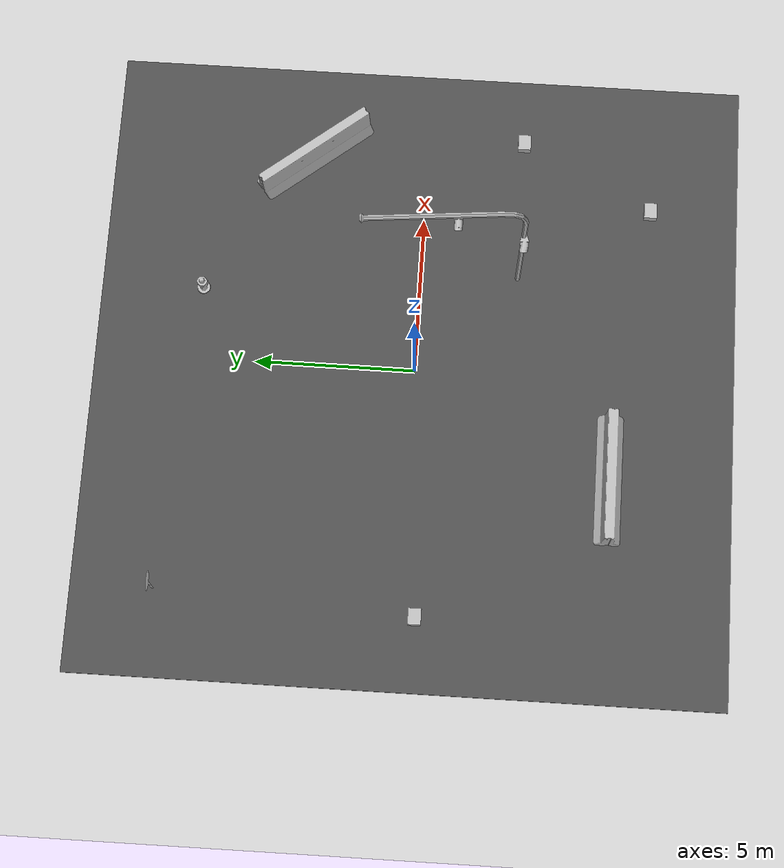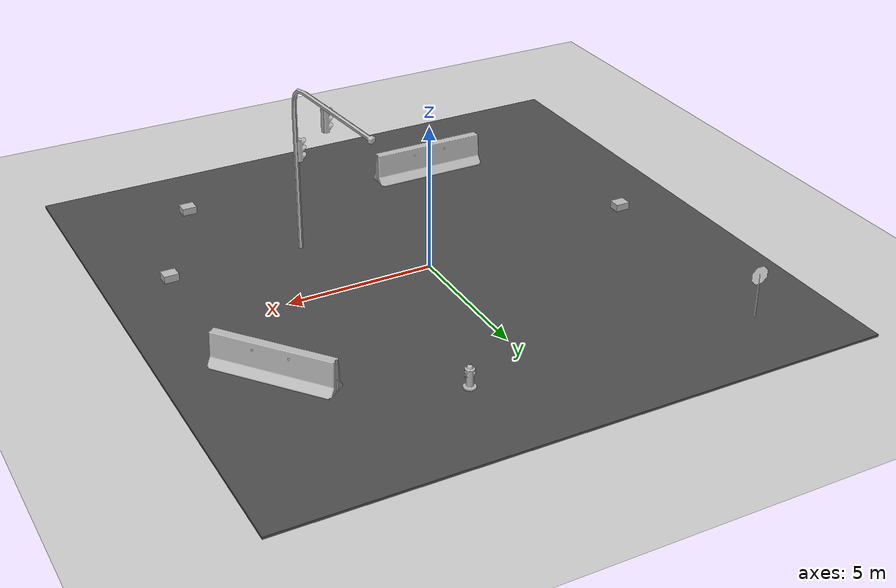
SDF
<sdf version="1.7">
 <world name="default">
  <light name="sun" type="directional">
   <pose>0 0 10 0 -0 0</pose>
   <diffuse>0.8 0.8 0.8 1</diffuse>
   <specular>0.2 0.2 0.2 1</specular>
   <attenuation>
    <range>1000</range>
    <constant>0.9</constant>
    <linear>0.01</linear>
    <quadratic>0.001</quadratic>
   </attenuation>
   <direction>-0.5 0.1 -0.9</direction>
   <spot><inner_angle>0</inner_angle><outer_angle>0</outer_angle><falloff>0</falloff></spot>
  </light>
  <model name="ground_plane">
   <static>1</static>
   <link name="link">
    <collision name="collision">
     <geometry><plane><normal>0 0 1</normal><size>100 100</size></plane></geometry>
     <surface>
      <contact><collide_bitmask>65535</collide_bitmask></contact>
      <friction><ode><mu>100</mu><mu2>50</mu2></ode></friction>
     </surface>
    </collision>
    <visual name="visual">
     <cast_shadows>0</cast_shadows>
     <geometry><plane><normal>0 0 1</normal><size>100 100</size></plane></geometry>
     <material>
      <script><uri>file://media/materials/scripts/gazebo.material</uri><name>Gazebo/Grey</name></script>
     </material>
    </visual>
   </link>
  </model>
  <gravity>0 0 -9.8</gravity>
  <magnetic_field>6e-06 2.3e-05 -4.2e-05</magnetic_field>
  <atmosphere type="adiabatic"/>
  <physics type="ode">
   <max_step_size>0.001</max_step_size>
   <real_time_factor>1</real_time_factor>
   <real_time_update_rate>1000</real_time_update_rate>
  </physics>
  <scene><ambient>0.4 0.4 0.4 1</ambient><background>0.7 0.7 0.7 1</background><shadows>1</shadows></scene>
  <spherical_coordinates>
   <surface_model>EARTH_WGS84</surface_model>
   <latitude_deg>0</latitude_deg>
   <longitude_deg>0</longitude_deg>
   <elevation>0</elevation>
   <heading_deg>0</heading_deg>
  </spherical_coordinates>
  <model name="asphalt_plane">
   <static>1</static>
   <link name="link">
    <collision name="collision"><geometry><box><size>20 20 0.1</size></box></geometry></collision>
    <visual name="visual">
     <cast_shadows>0</cast_shadows>
     <geometry><box><size>20 20 0.1</size></box></geometry>
     <material>
      <script>
       <uri>model://asphalt_plane/materials/scripts</uri>
       <uri>model://asphalt_plane/materials/textures</uri>
       <name>vrc/asphalt</name>
      </script>
     </material>
    </visual>
   </link>
   <pose>-0.030372 0.027147 0 0 -0 0</pose>
  </model>
  <model name="jersey_barrier">
   <static>1</static>
   <link name="link">
    <visual name="visual">
     <geometry><mesh><uri>model://jersey_barrier/meshes/jersey_barrier.dae</uri></mesh></geometry>
    </visual>
    <collision name="upright">
     <pose>0 0 0.5715 0 -0 0</pose>
     <geometry><box><size>4.06542 0.3063 1.143</size></box></geometry>
    </collision>
    <collision name="base">
     <pose>0 0 0.032258 0 -0 0</pose>
     <geometry><box><size>4.06542 0.8107 0.064516</size></box></geometry>
    </collision>
    <collision name="base2">
     <pose>0 0 0.1 0 -0 0</pose>
     <geometry><box><size>4.06542 0.65 0.1</size></box></geometry>
    </collision>
    <collision name="base3">
     <pose>0 0 0.2 0 -0 0</pose>
     <geometry><box><size>4.06542 0.5 0.1</size></box></geometry>
    </collision>
    <collision name="left-angle">
     <pose>0 -0.224 0.2401 0.9 -0 0</pose>
     <geometry><box><size>4.06542 0.5 0.064516</size></box></geometry>
    </collision>
    <collision name="right-angle">
     <pose>0 0.224 0.2401 -0.9 0 0</pose>
     <geometry><box><size>4.06542 0.5 0.064516</size></box></geometry>
    </collision>
   </link>
   <pose>-3.1609 -6.17519 0 0 -0 0</pose>
  </model>
  <model name="jersey_barrier_clone">
   <static>1</static>
   <link name="link">
    <visual name="visual">
     <geometry><mesh><uri>model://jersey_barrier/meshes/jersey_barrier.dae</uri></mesh></geometry>
    </visual>
    <collision name="upright">
     <pose>0 0 0.5715 0 -0 0</pose>
     <geometry><box><size>4.06542 0.3063 1.143</size></box></geometry>
    </collision>
    <collision name="base">
     <pose>0 0 0.032258 0 -0 0</pose>
     <geometry><box><size>4.06542 0.8107 0.064516</size></box></geometry>
    </collision>
    <collision name="base2">
     <pose>0 0 0.1 0 -0 0</pose>
     <geometry><box><size>4.06542 0.65 0.1</size></box></geometry>
    </collision>
    <collision name="base3">
     <pose>0 0 0.2 0 -0 0</pose>
     <geometry><box><size>4.06542 0.5 0.1</size></box></geometry>
    </collision>
    <collision name="left-angle">
     <pose>0 -0.224 0.2401 0.9 -0 0</pose>
     <geometry><box><size>4.06542 0.5 0.064516</size></box></geometry>
    </collision>
    <collision name="right-angle">
     <pose>0 0.224 0.2401 -0.9 0 0</pose>
     <geometry><box><size>4.06542 0.5 0.064516</size></box></geometry>
    </collision>
   </link>
   <pose>6.96644 3.62246 0 0 0 -0.897391</pose>
  </model>
  <model name="cardboard_box">
   <pose>5.69494 -7.19668 0.15 0 -0 0</pose>
   <link name="link">
    <inertial>
     <mass>2</mass>
     <inertia>
      <ixx>0.0416667</ixx>
      <ixy>0</ixy>
      <ixz>0</ixz>
      <iyy>0.0566667</iyy>
      <iyz>0</iyz>
      <izz>0.0683333</izz>
     </inertia>
    </inertial>
    <collision name="collision">
     <geometry><box><size>0.5 0.4 0.3</size></box></geometry>
     <surface>
      <friction><ode><mu>1</mu><mu2>1</mu2></ode></friction>
      <contact><ode><kp>1e+07</kp><kd>1</kd><min_depth>0.001</min_depth><max_vel>0.1</max_vel></ode></contact>
     </surface>
    </collision>
    <visual name="visual">
     <pose>0 0 -0.15 0 -0 0</pose>
     <geometry>
      <mesh><uri>model://cardboard_box/meshes/cardboard_box.dae</uri><scale>1.25932 1.00745 0.755591</scale></mesh>
     </geometry>
    </visual>
   </link>
  </model>
  <model name="cardboard_box_0">
   <pose>7.78889 -3.08062 0.15 0 -0 0</pose>
   <link name="link">
    <inertial>
     <mass>2</mass>
     <inertia>
      <ixx>0.0416667</ixx>
      <ixy>0</ixy>
      <ixz>0</ixz>
      <iyy>0.0566667</iyy>
      <iyz>0</iyz>
      <izz>0.0683333</izz>
     </inertia>
    </inertial>
    <collision name="collision">
     <geometry><box><size>0.5 0.4 0.3</size></box></geometry>
     <surface>
      <friction><ode><mu>1</mu><mu2>1</mu2></ode></friction>
      <contact><ode><kp>1e+07</kp><kd>1</kd><min_depth>0.001</min_depth><max_vel>0.1</max_vel></ode></contact>
     </surface>
    </collision>
    <visual name="visual">
     <pose>0 0 -0.15 0 -0 0</pose>
     <geometry>
      <mesh><uri>model://cardboard_box/meshes/cardboard_box.dae</uri><scale>1.25932 1.00745 0.755591</scale></mesh>
     </geometry>
    </visual>
   </link>
  </model>
  <model name="cardboard_box_1">
   <pose>-7.74738 -0.474517 0.15 0 -0 0</pose>
   <link name="link">
    <inertial>
     <mass>2</mass>
     <inertia>
      <ixx>0.0416667</ixx>
      <ixy>0</ixy>
      <ixz>0</ixz>
      <iyy>0.0566667</iyy>
      <iyz>0</iyz>
      <izz>0.0683333</izz>
     </inertia>
    </inertial>
    <collision name="collision">
     <geometry><box><size>0.5 0.4 0.3</size></box></geometry>
     <surface>
      <friction><ode><mu>1</mu><mu2>1</mu2></ode></friction>
      <contact><ode><kp>1e+07</kp><kd>1</kd><min_depth>0.001</min_depth><max_vel>0.1</max_vel></ode></contact>
     </surface>
    </collision>
    <visual name="visual">
     <pose>0 0 -0.15 0 -0 0</pose>
     <geometry>
      <mesh><uri>model://cardboard_box/meshes/cardboard_box.dae</uri><scale>1.25932 1.00745 0.755591</scale></mesh>
     </geometry>
    </visual>
   </link>
  </model>
  <model name="fire_hydrant">
   <static>1</static>
   <link name="link">
    <collision name="collision">
     <geometry><mesh><uri>model://fire_hydrant/meshes/fire_hydrant.dae</uri></mesh></geometry>
    </collision>
    <visual name="visual">
     <geometry><mesh><uri>model://fire_hydrant/meshes/fire_hydrant.dae</uri></mesh></geometry>
    </visual>
   </link>
   <pose>2.29376 6.80829 0 0 -0 0</pose>
  </model>
  <model name="Stop Sign">
   <static>1</static>
   <link name="link">
    <collision name="collision">
     <geometry><mesh><uri>model://stop_sign/meshes/stop_sign.dae</uri></mesh></geometry>
    </collision>
    <visual name="visual">
     <geometry><mesh><uri>model://stop_sign/meshes/stop_sign.dae</uri></mesh></geometry>
     <material>
      <script>
       <uri>model://stop_sign/materials/scripts</uri>
       <uri>model://stop_sign/materials/textures</uri>
       <name>StopSign/Diffuse</name>
      </script>
     </material>
    </visual>
   </link>
   <pose>-7.3621 7.49034 0 0 -0 0</pose>
  </model>
  <model name="stop_light_post">
   <static>1</static>
   <link name="link">
    <collision name="post">
     <geometry>
      <mesh><uri>model://stop_light_post/meshes/stop_light_post.obj</uri><scale>0.01 0.01 0.01</scale></mesh>
     </geometry>
    </collision>
    <visual name="post">
     <geometry>
      <mesh><uri>model://stop_light_post/meshes/stop_light_post.obj</uri><scale>0.01 0.01 0.01</scale></mesh>
     </geometry>
    </visual>
   </link>
   <frame name="right_light::__model__" attached_to="right_light::link">
    <pose relative_to="__model__">0 -0.05 4 0 -0 0</pose>
   </frame>
   <static>1</static>
   <link name="right_light::link">
    <collision name="collision">
     <geometry>
      <mesh><uri>model://stop_light/meshes/stop_light.obj</uri><scale>0.01 0.01 0.01</scale></mesh>
     </geometry>
    </collision>
    <visual name="frame">
     <geometry>
      <mesh><uri>model://stop_light/meshes/stop_light.obj</uri><scale>0.01 0.01 0.01</scale></mesh>
     </geometry>
    </visual>
    <visual name="red">
     <pose>-0.001123 -0.082251 -0.147514 0 -0 0</pose>
     <geometry><sphere><radius>0.1012</radius></sphere></geometry>
     <material>
      <script>
       <uri>model://stop_light/materials/scripts/</uri>
       <uri>model://stop_light/materials/textures/</uri>
       <name>StopLight/Light</name>
      </script>
      <ambient>1 0 0 1</ambient>
      <specular>1 0 0 1</specular>
     </material>
    </visual>
    <visual name="yellow">
     <pose>-0.001123 -0.082251 -0.402 0 -0 0</pose>
     <geometry><sphere><radius>0.1012</radius></sphere></geometry>
     <material>
      <script>
       <uri>model://stop_light/materials/scripts/</uri>
       <uri>model://stop_light/materials/textures/</uri>
       <name>StopLight/Light</name>
      </script>
      <ambient>1 1 0 1</ambient>
      <specular>1 1 0 1</specular>
     </material>
    </visual>
    <visual name="green">
     <pose>-0.001123 -0.082251 -0.655 0 -0 0</pose>
     <geometry><sphere><radius>0.1012</radius></sphere></geometry>
     <material>
      <script>
       <uri>model://stop_light/materials/scripts/</uri>
       <uri>model://stop_light/materials/textures/</uri>
       <name>StopLight/Light</name>
      </script>
      <ambient>0 1 0 1</ambient>
      <specular>0 1 0 1</specular>
     </material>
    </visual>
    <pose relative_to="right_light::__model__">0 0 0 0 -0 0</pose>
   </link>
   <frame name="center_light::__model__" attached_to="center_light::link">
    <pose relative_to="__model__">-2 0.04 5.82 0 -0 0</pose>
   </frame>
   <static>1</static>
   <link name="center_light::link">
    <collision name="collision">
     <geometry>
      <mesh><uri>model://stop_light/meshes/stop_light.obj</uri><scale>0.01 0.01 0.01</scale></mesh>
     </geometry>
    </collision>
    <visual name="frame">
     <geometry>
      <mesh><uri>model://stop_light/meshes/stop_light.obj</uri><scale>0.01 0.01 0.01</scale></mesh>
     </geometry>
    </visual>
    <visual name="red">
     <pose>-0.001123 -0.082251 -0.147514 0 -0 0</pose>
     <geometry><sphere><radius>0.1012</radius></sphere></geometry>
     <material>
      <script>
       <uri>model://stop_light/materials/scripts/</uri>
       <uri>model://stop_light/materials/textures/</uri>
       <name>StopLight/Light</name>
      </script>
      <ambient>1 0 0 1</ambient>
      <specular>1 0 0 1</specular>
     </material>
    </visual>
    <visual name="yellow">
     <pose>-0.001123 -0.082251 -0.402 0 -0 0</pose>
     <geometry><sphere><radius>0.1012</radius></sphere></geometry>
     <material>
      <script>
       <uri>model://stop_light/materials/scripts/</uri>
       <uri>model://stop_light/materials/textures/</uri>
       <name>StopLight/Light</name>
      </script>
      <ambient>1 1 0 1</ambient>
      <specular>1 1 0 1</specular>
     </material>
    </visual>
    <visual name="green">
     <pose>-0.001123 -0.082251 -0.655 0 -0 0</pose>
     <geometry><sphere><radius>0.1012</radius></sphere></geometry>
     <material>
      <script>
       <uri>model://stop_light/materials/scripts/</uri>
       <uri>model://stop_light/materials/textures/</uri>
       <name>StopLight/Light</name>
      </script>
      <ambient>0 1 0 1</ambient>
      <specular>0 1 0 1</specular>
     </material>
    </visual>
    <pose relative_to="center_light::__model__">0 0 0 0 -0 0</pose>
   </link>
   <pose>3.23069 -3.07597 0 0 0 -1.48067</pose>
  </model>
 </world>
</sdf>
